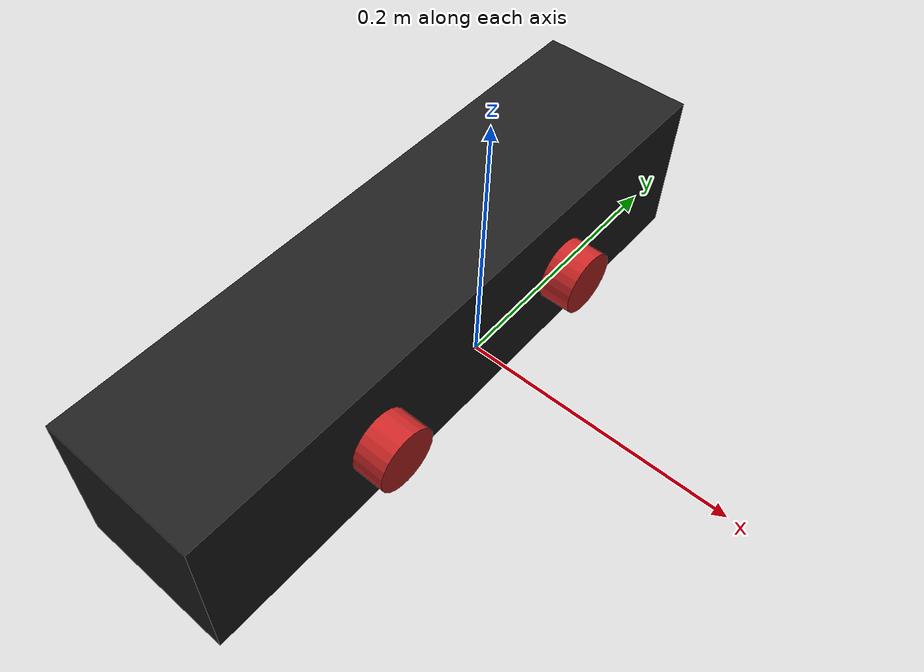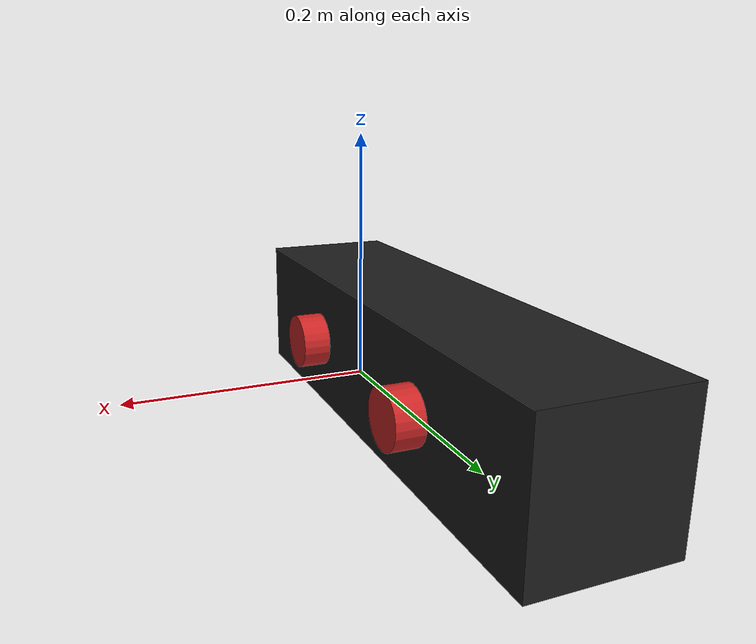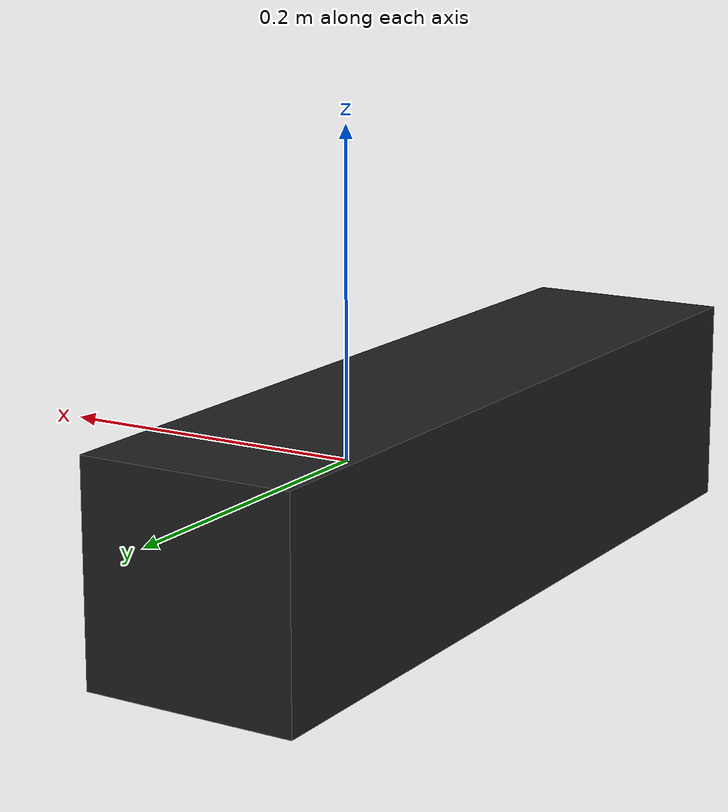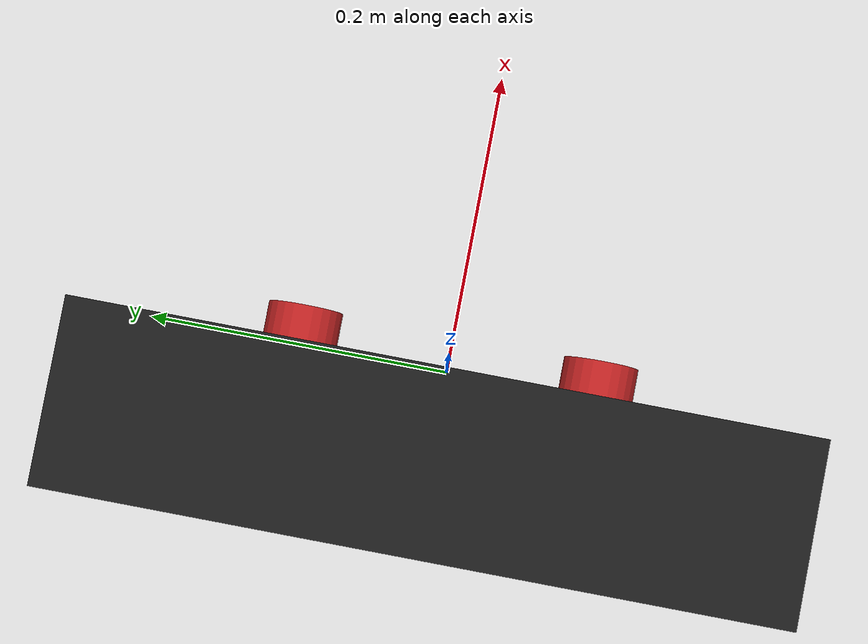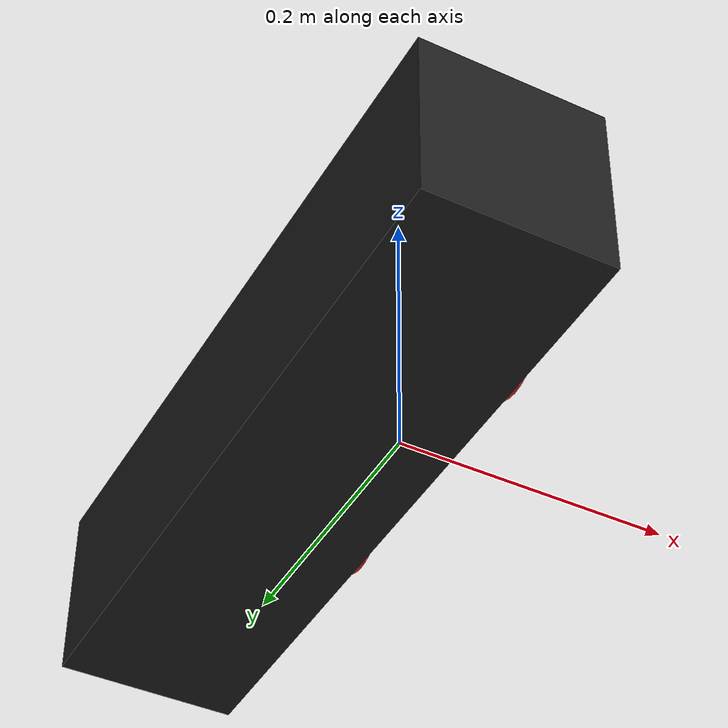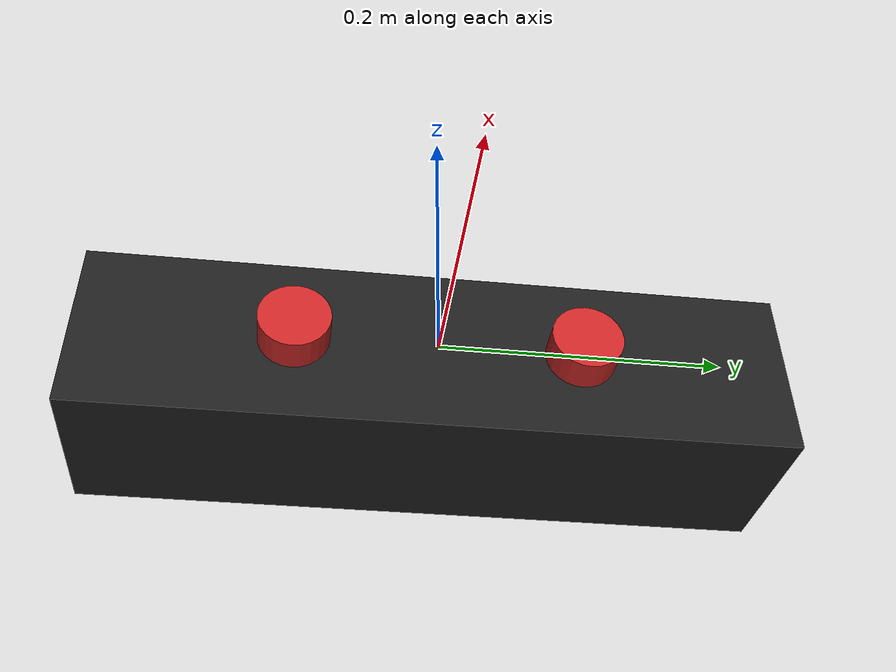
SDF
<?xml version="1.0"?>

<sdf version="1.4">
    <model name="stereo">
        <static>false</static>
        <pose>0 0 0 0 0 0</pose> <!-- dimensions are measured from the center of the model-->

        <link name="mount">
            <pose>-0.0625 0.0 0 0 0 0</pose>
            <inertial>
                <pose>0 0 0 0 0 0</pose><!-- at the center of the block-->
                <inertia>
                    <!-- values for mass = 10 -->
                    <ixx>0.01</ixx>
                    <ixy>0</ixy>
                    <ixz>0</ixz>
                    <iyy>0.01</iyy>
                    <iyz>0</iyz>
                    <izz>0.01</izz>
                </inertia>
                <mass>1</mass>
            </inertial>
            <collision name="housing_collision">
                <geometry>
                    <box>
                        <size>0.125 0.5 0.125</size>
                    </box>
                </geometry>
            </collision>
            <visual name="housing_visual">
                <geometry>
                    <box>
                        <size>0.125 0.5 0.125</size>
                    </box>
                </geometry>
                <material>
                    <script>
                        <uri>file://media/materials/scripts/gazebo.material</uri>
                        <name>Gazebo/Black</name>
                    </script>
                </material>
            </visual>
        </link>
        <link name="right_camera">
            <pose>0.0 -0.1 0 0 1.5707 0</pose>
            <inertial>
                <inertia>
                    <!-- assign some small values for the physics engine to evaluate, change them later on -->
                    <ixx>0.01</ixx>
                    <ixy>0</ixy>
                    <ixz>0</ixz>
                    <iyy>0.01</iyy>
                    <iyz>0</iyz>
                    <izz>0.01</izz>
                </inertia>
                <mass>0.5</mass>
            </inertial>
            <collision name="camera_collision">
                <geometry>
                    <cylinder>
                        <radius>0.025</radius>
                        <length>0.05</length>
                    </cylinder>
                </geometry>
            </collision>
            <visual name="camera_visual">
                <geometry>
                    <cylinder>
                        <radius>0.025</radius>
                        <length>0.05</length>
                    </cylinder>
                </geometry>
                <material>
                    <script>
                        <uri>file://media/materials/scripts/gazebo.material</uri>
                        <name>Gazebo/Red</name>
                    </script>
                </material>
            </visual>
            <sensor name="right_camera" type="camera">
                <always_on>1</always_on>
                <update_rate>50</update_rate>
                <visualize>0</visualize>
                <pose>0 0 0 0 1.5708 0</pose>
                <camera>
                    <pose>0 0 0 0 0 0</pose>
                    <horizontal_fov>1.047</horizontal_fov>
                    <image>
                        <width>320</width>
                        <height>240</height>
                    </image>
                    <clip>
                        <near>0.1</near>
                        <far>100</far>
                    </clip>
                </camera>
            </sensor>
        </link>
        <link name="left_camera">
            <pose>0 0.1 0 0 1.5707 0</pose>
            <inertial>
                <inertia>
                    <ixx>0.01</ixx>
                    <ixy>0</ixy>
                    <ixz>0</ixz>
                    <iyy>0.01</iyy>
                    <iyz>0</iyz>
                    <izz>0.01</izz>
                </inertia>
                <mass>0.1</mass>
            </inertial>
            <collision name="camera_collision">
                <geometry>
                    <cylinder>
                        <radius>0.025</radius>
                        <length>0.05</length>
                    </cylinder>
                </geometry>
            </collision>
            <visual name="camera_visual">
                <geometry>
                    <cylinder>
                        <radius>0.025</radius>
                        <length>0.05</length>
                    </cylinder>
                </geometry>
                <material>
                    <script>
                        <uri>file://media/materials/scripts/gazebo.material</uri>
                        <name>Gazebo/Red</name>
                    </script>
                </material>
            </visual>
            <sensor name="left_camera" type="camera">
                <always_on>1</always_on>
                <update_rate>50</update_rate>
                <visualize>0</visualize>
                <pose>0 0 0 0 1.5708 0</pose>
                <camera>
                    <pose>0 0 0 0 0 0</pose>
                    <horizontal_fov>1.047</horizontal_fov>
                    <image>
                        <width>320</width>
                        <height>240</height>
                    </image>
                    <clip>
                        <near>0.1</near>
                        <far>100</far>
                    </clip>
                    <!-- save and noise to be done if required -->
                </camera>
            </sensor>
        </link>

        <joint name="right_mount" type="prismatic">
            <child>right_camera</child>
            <parent>mount</parent>
            <axis>
                <limit>
                    <lower>0</lower>
                    <upper>0</upper>
                </limit>
                <xyz>0 0 1</xyz>
            </axis>
        </joint>
        <joint name="left_mount" type="prismatic">
            <child>left_camera</child>
            <parent>mount</parent>
            <axis>
                <limit>
                    <lower>0</lower>
                    <upper>0</upper>
                </limit>
                <xyz>0 0 1</xyz>
            </axis>
        </joint>

    </model>
</sdf>
